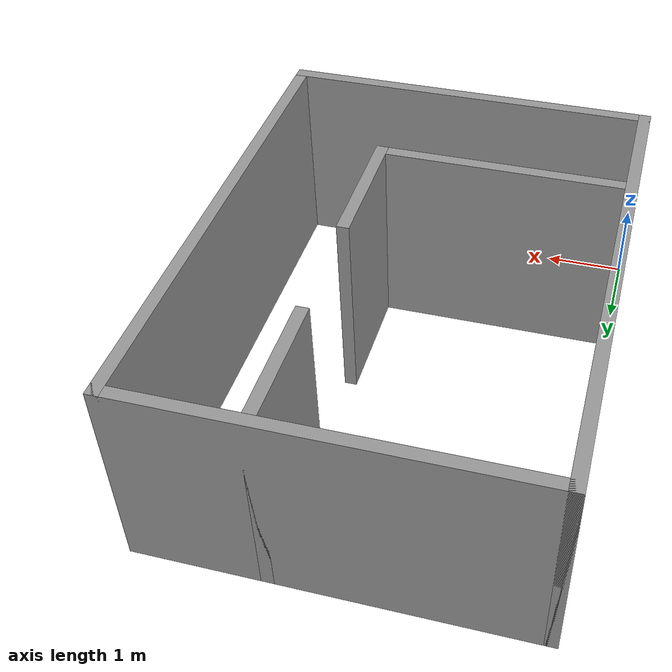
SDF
<?xml version='1.0'?>
<sdf version='1.6'>
  <model name='Project_1_Building'>
    <pose frame=''>2.286 3.048 0 0 -0 0</pose>
    <link name='Wall_10'>
      <collision name='Wall_10_Collision'>
        <geometry>
          <box>
            <size>4.722 0.15 2.5</size>
          </box>
        </geometry>
        <pose frame=''>0 0 1.25 0 -0 0</pose>
      </collision>
      <visual name='Wall_10_Visual'>
        <pose frame=''>0 0 1.25 0 -0 0</pose>
        <geometry>
          <box>
            <size>4.722 0.15 2.5</size>
          </box>
        </geometry>
        <material>
          <script>
            <uri>file://media/materials/scripts/gazebo.material</uri>
            <name>Gazebo/Grey</name>
          </script>
          <ambient>1 1 1 1</ambient>
        </material>
        <meta>
          <layer>0</layer>
        </meta>
      </visual>
      <pose frame=''>0 3.048 0 0 -0 0</pose>
    </link>
    <link name='Wall_14'>
      <collision name='Wall_14_Collision'>
        <geometry>
          <box>
            <size>6.246 0.15 2.5</size>
          </box>
        </geometry>
        <pose frame=''>0 0 1.25 0 -0 0</pose>
      </collision>
      <visual name='Wall_14_Visual'>
        <pose frame=''>0 0 1.25 0 -0 0</pose>
        <geometry>
          <box>
            <size>6.246 0.15 2.5</size>
          </box>
        </geometry>
        <material>
          <script>
            <uri>file://media/materials/scripts/gazebo.material</uri>
            <name>Gazebo/Grey</name>
          </script>
          <ambient>1 1 1 1</ambient>
        </material>
        <meta>
          <layer>0</layer>
        </meta>
      </visual>
      <pose frame=''>2.286 0 0 0 -0 1.5708</pose>
    </link>
    <link name='Wall_16'>
      <collision name='Wall_16_Collision'>
        <geometry>
          <box>
            <size>1.674 0.15 2.5</size>
          </box>
        </geometry>
        <pose frame=''>0 0 1.25 0 -0 0</pose>
      </collision>
      <visual name='Wall_16_Visual'>
        <pose frame=''>0 0 1.25 0 -0 0</pose>
        <geometry>
          <box>
            <size>1.674 0.15 2.5</size>
          </box>
        </geometry>
        <material>
          <script>
            <uri>file://media/materials/scripts/gazebo.material</uri>
            <name>Gazebo/Grey</name>
          </script>
          <ambient>1 1 1 1</ambient>
        </material>
        <meta>
          <layer>0</layer>
        </meta>
      </visual>
      <pose frame=''>0.762 -0.762 0 0 -0 1.5708</pose>
    </link>
    <link name='Wall_18'>
      <collision name='Wall_18_Collision'>
        <geometry>
          <box>
            <size>1.674 0.15 2.5</size>
          </box>
        </geometry>
        <pose frame=''>0 0 1.25 0 -0 0</pose>
      </collision>
      <visual name='Wall_18_Visual'>
        <pose frame=''>0 0 1.25 0 -0 0</pose>
        <geometry>
          <box>
            <size>1.674 0.15 2.5</size>
          </box>
        </geometry>
        <material>
          <script>
            <uri>file://media/materials/scripts/gazebo.material</uri>
            <name>Gazebo/Grey</name>
          </script>
          <ambient>1 1 1 1</ambient>
        </material>
        <meta>
          <layer>0</layer>
        </meta>
      </visual>
      <pose frame=''>0.762 2.286 0 0 -0 1.5708</pose>
    </link>
    <link name='Wall_2'>
      <collision name='Wall_2_Collision'>
        <geometry>
          <box>
            <size>6.246 0.15 2.5</size>
          </box>
        </geometry>
        <pose frame=''>0 0 1.25 0 -0 0</pose>
      </collision>
      <visual name='Wall_2_Visual'>
        <pose frame=''>0 0 1.25 0 -0 0</pose>
        <geometry>
          <box>
            <size>6.246 0.15 2.5</size>
          </box>
        </geometry>
        <material>
          <script>
            <uri>file://media/materials/scripts/gazebo.material</uri>
            <name>Gazebo/Grey</name>
          </script>
          <ambient>1 1 1 1</ambient>
        </material>
        <meta>
          <layer>0</layer>
        </meta>
      </visual>
      <pose frame=''>-2.286 0 0 0 -0 1.5708</pose>
    </link>
    <link name='Wall_4'>
      <collision name='Wall_4_Collision'>
        <geometry>
          <box>
            <size>4.722 0.15 2.5</size>
          </box>
        </geometry>
        <pose frame=''>0 0 1.25 0 -0 0</pose>
      </collision>
      <visual name='Wall_4_Visual'>
        <pose frame=''>0 0 1.25 0 -0 0</pose>
        <geometry>
          <box>
            <size>4.722 0.15 2.5</size>
          </box>
        </geometry>
        <material>
          <script>
            <uri>file://media/materials/scripts/gazebo.material</uri>
            <name>Gazebo/Grey</name>
          </script>
          <ambient>1 1 1 1</ambient>
        </material>
        <meta>
          <layer>0</layer>
        </meta>
      </visual>
      <pose frame=''>0 -3.048 0 0 -0 0</pose>
    </link>
    <link name='Wall_6'>
      <collision name='Wall_6_Collision'>
        <geometry>
          <box>
            <size>3.198 0.15 2.5</size>
          </box>
        </geometry>
        <pose frame=''>0 0 1.25 0 -0 0</pose>
      </collision>
      <visual name='Wall_6_Visual'>
        <pose frame=''>0 0 1.25 0 -0 0</pose>
        <geometry>
          <box>
            <size>3.198 0.15 2.5</size>
          </box>
        </geometry>
        <material>
          <script>
            <uri>file://media/materials/scripts/gazebo.material</uri>
            <name>Gazebo/Grey</name>
          </script>
          <ambient>1 1 1 1</ambient>
        </material>
        <meta>
          <layer>0</layer>
        </meta>
      </visual>
      <pose frame=''>-0.762 -1.524 0 0 -0 0</pose>
    </link>
    <static>1</static>
  </model>
</sdf>
